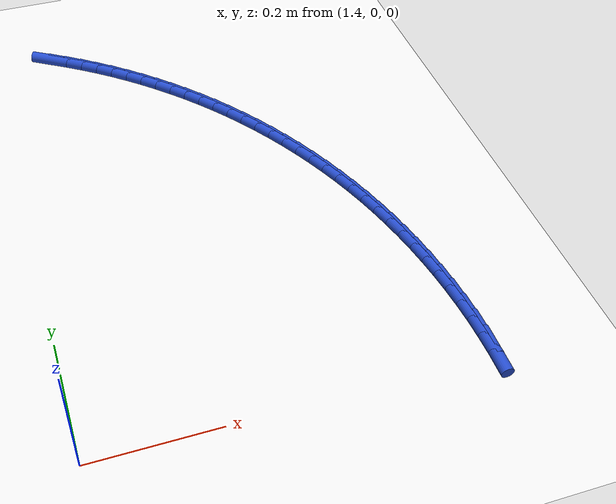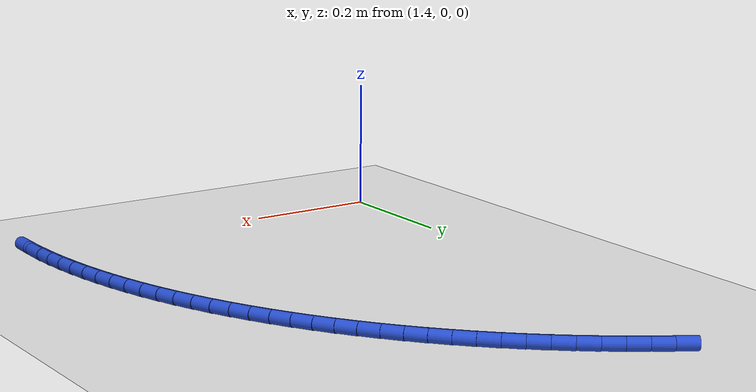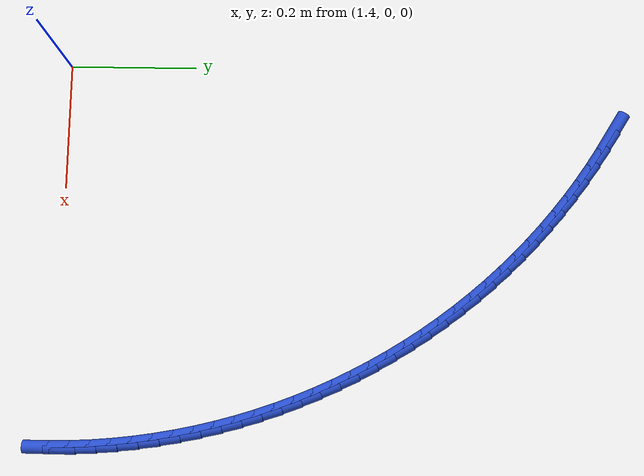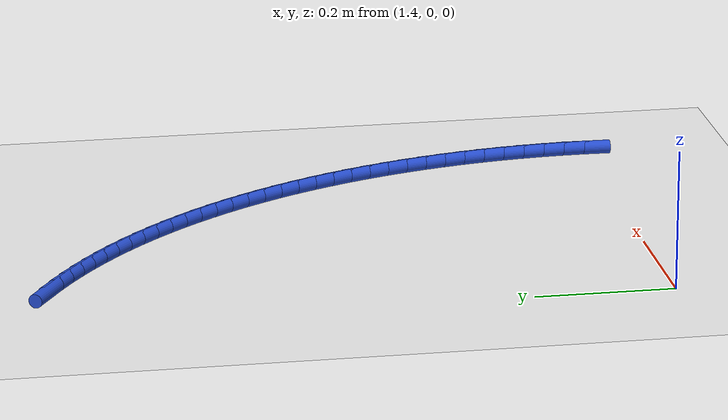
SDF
<sdf version="1.6">
 <world name="default">
  <model name="ground_plane">
   <static>1</static>
   <link name="link">
    <collision name="collision">
     <geometry><plane><normal>0 0 1</normal><size>100 100</size></plane></geometry>
     <surface><friction><ode><mu>100</mu><mu2>50</mu2></ode></friction></surface>
    </collision>
    <visual name="visual">
     <cast_shadows>0</cast_shadows>
     <geometry><plane><normal>0 0 1</normal><size>100 100</size></plane></geometry>
     <material>
      <script><uri>file://media/materials/scripts/gazebo.material</uri><name>Gazebo/WhiteGlow</name></script>
     </material>
    </visual>
   </link>
  </model>
  <model name="line">
   <static>1</static>
   <static>1</static>
   <static>1</static>
   <static>1</static>
   <static>1</static>
   <static>1</static>
   <static>1</static>
   <static>1</static>
   <static>1</static>
   <static>1</static>
   <static>1</static>
   <static>1</static>
   <static>1</static>
   <static>1</static>
   <static>1</static>
   <static>1</static>
   <static>1</static>
   <static>1</static>
   <static>1</static>
   <static>1</static>
   <static>1</static>
   <static>1</static>
   <static>1</static>
   <static>1</static>
   <static>1</static>
   <static>1</static>
   <static>1</static>
   <static>1</static>
   <static>1</static>
   <static>1</static>
   <static>1</static>
   <static>1</static>
   <static>1</static>
   <static>1</static>
   <static>1</static>
   <static>1</static>
   <static>1</static>
   <static>1</static>
   <static>1</static>
   <static>1</static>
   <static>1</static>
   <static>1</static>
   <static>1</static>
   <static>1</static>
   <static>1</static>
   <static>1</static>
   <static>1</static>
   <static>1</static>
   <static>1</static>
   <static>1</static>
   <static>1</static>
   <static>1</static>
   <static>1</static>
   <static>1</static>
   <static>1</static>
   <static>1</static>
   <static>1</static>
   <static>1</static>
   <static>1</static>
   <static>1</static>
   <static>1</static>
   <static>1</static>
   <static>1</static>
   <static>1</static>
   <static>1</static>
   <static>1</static>
   <static>1</static>
   <static>1</static>
   <link name="link_67">
    <pose>1.509034119153249 0.8607250578068034 0.01 0 1.57 -0.5495359490718497</pose>
    <collision name="collision">
     <geometry><cylinder><radius>0.01</radius><length>0.08</length></cylinder></geometry>
    </collision>
    <visual name="visual">
     <material>
      <script><name>Gazebo/Blue</name><uri>file://media/materials/scripts/gazebo.material</uri></script>
     </material>
     <geometry><cylinder><radius>0.01</radius><length>0.08</length></cylinder></geometry>
    </visual>
   </link>
   <static>1</static>
   <link name="link_68">
    <pose>1.5358231705817829 0.844317650307365 0.01 0 1.57 -0.5809653829443108</pose>
    <collision name="collision">
     <geometry><cylinder><radius>0.01</radius><length>0.08</length></cylinder></geometry>
    </collision>
    <visual name="visual">
     <material>
      <script><name>Gazebo/Blue</name><uri>file://media/materials/scripts/gazebo.material</uri></script>
     </material>
     <geometry><cylinder><radius>0.01</radius><length>0.08</length></cylinder></geometry>
    </visual>
   </link>
   <static>1</static>
   <link name="link_69">
    <pose>1.5620827950779084 0.8270769176921222 0.01 0 1.57 -0.6125046645061244</pose>
    <collision name="collision">
     <geometry><cylinder><radius>0.01</radius><length>0.08</length></cylinder></geometry>
    </collision>
    <visual name="visual">
     <material>
      <script><name>Gazebo/Blue</name><uri>file://media/materials/scripts/gazebo.material</uri></script>
     </material>
     <geometry><cylinder><radius>0.01</radius><length>0.08</length></cylinder></geometry>
    </visual>
   </link>
   <static>1</static>
   <link name="link_70">
    <pose>1.5877852522924727 0.809016994374947 0.01 0 1.57 -0.6441323969297834</pose>
    <collision name="collision">
     <geometry><cylinder><radius>0.01</radius><length>0.08</length></cylinder></geometry>
    </collision>
    <visual name="visual">
     <material>
      <script><name>Gazebo/Blue</name><uri>file://media/materials/scripts/gazebo.material</uri></script>
     </material>
     <geometry><cylinder><radius>0.01</radius><length>0.08</length></cylinder></geometry>
    </visual>
   </link>
   <static>1</static>
   <link name="link_71">
    <pose>1.6129037561235584 0.790153328178354 0.01 0 1.57 -0.6756716784915974</pose>
    <collision name="collision">
     <geometry><cylinder><radius>0.01</radius><length>0.08</length></cylinder></geometry>
    </collision>
    <visual name="visual">
     <material>
      <script><name>Gazebo/Blue</name><uri>file://media/materials/scripts/gazebo.material</uri></script>
     </material>
     <geometry><cylinder><radius>0.01</radius><length>0.08</length></cylinder></geometry>
    </visual>
   </link>
   <static>1</static>
   <link name="link_72">
    <pose>1.6374153374581952 0.7705066205594346 0.01 0 1.57 -0.7071011123640809</pose>
    <collision name="collision">
     <geometry><cylinder><radius>0.01</radius><length>0.08</length></cylinder></geometry>
    </collision>
    <visual name="visual">
     <material>
      <script><name>Gazebo/Blue</name><uri>file://media/materials/scripts/gazebo.material</uri></script>
     </material>
     <geometry><cylinder><radius>0.01</radius><length>0.08</length></cylinder></geometry>
    </visual>
   </link>
   <static>1</static>
   <link name="link_73">
    <pose>1.6612979814306472 0.7500988863839226 0.01 0 1.57 -0.738451627178918</pose>
    <collision name="collision">
     <geometry><cylinder><radius>0.01</radius><length>0.08</length></cylinder></geometry>
    </collision>
    <visual name="visual">
     <material>
      <script><name>Gazebo/Blue</name><uri>file://media/materials/scripts/gazebo.material</uri></script>
     </material>
     <geometry><cylinder><radius>0.01</radius><length>0.08</length></cylinder></geometry>
    </visual>
   </link>
   <static>1</static>
   <link name="link_74">
    <pose>1.6845296731751813 0.7289521405175535 0.01 0 1.57 -0.7697546094063723</pose>
    <collision name="collision">
     <geometry><cylinder><radius>0.01</radius><length>0.08</length></cylinder></geometry>
    </collision>
    <visual name="visual">
     <material>
      <script><name>Gazebo/Blue</name><uri>file://media/materials/scripts/gazebo.material</uri></script>
     </material>
     <geometry><cylinder><radius>0.01</radius><length>0.08</length></cylinder></geometry>
    </visual>
   </link>
   <static>1</static>
   <link name="link_75">
    <pose>1.7070883978260616 0.7070883978260615 0.01 0 1.57 -0.8010417173885143</pose>
    <collision name="collision">
     <geometry><cylinder><radius>0.01</radius><length>0.08</length></cylinder></geometry>
    </collision>
    <visual name="visual">
     <material>
      <script><name>Gazebo/Blue</name><uri>file://media/materials/scripts/gazebo.material</uri></script>
     </material>
     <geometry><cylinder><radius>0.01</radius><length>0.08</length></cylinder></geometry>
    </visual>
   </link>
   <static>1</static>
   <link name="link_76">
    <pose>1.7289521405175539 0.6845296731751814 0.01 0 1.57 -0.8323446996159641</pose>
    <collision name="collision">
     <geometry><cylinder><radius>0.01</radius><length>0.08</length></cylinder></geometry>
    </collision>
    <visual name="visual">
     <material>
      <script><name>Gazebo/Blue</name><uri>file://media/materials/scripts/gazebo.material</uri></script>
     </material>
     <geometry><cylinder><radius>0.01</radius><length>0.08</length></cylinder></geometry>
    </visual>
   </link>
   <static>1</static>
   <link name="link_77">
    <pose>1.750098886383923 0.6612979814306479 0.01 0 1.57 -0.8636952144308172</pose>
    <collision name="collision">
     <geometry><cylinder><radius>0.01</radius><length>0.08</length></cylinder></geometry>
    </collision>
    <visual name="visual">
     <material>
      <script><name>Gazebo/Blue</name><uri>file://media/materials/scripts/gazebo.material</uri></script>
     </material>
     <geometry><cylinder><radius>0.01</radius><length>0.08</length></cylinder></geometry>
    </visual>
   </link>
   <static>1</static>
   <link name="link_78">
    <pose>1.7705066205594353 0.6374153374581956 0.01 0 1.57 -0.8951246483032743</pose>
    <collision name="collision">
     <geometry><cylinder><radius>0.01</radius><length>0.08</length></cylinder></geometry>
    </collision>
    <visual name="visual">
     <material>
      <script><name>Gazebo/Blue</name><uri>file://media/materials/scripts/gazebo.material</uri></script>
     </material>
     <geometry><cylinder><radius>0.01</radius><length>0.08</length></cylinder></geometry>
    </visual>
   </link>
   <static>1</static>
   <link name="link_79">
    <pose>1.7901533281783553 0.6129037561235593 0.01 0 1.57 -0.9266639298651259</pose>
    <collision name="collision">
     <geometry><cylinder><radius>0.01</radius><length>0.08</length></cylinder></geometry>
    </collision>
    <visual name="visual">
     <material>
      <script><name>Gazebo/Blue</name><uri>file://media/materials/scripts/gazebo.material</uri></script>
     </material>
     <geometry><cylinder><radius>0.01</radius><length>0.08</length></cylinder></geometry>
    </visual>
   </link>
   <static>1</static>
   <link name="link_80">
    <pose>1.809016994374948 0.5877852522924734 0.01 0 1.57 -0.9582916622887488</pose>
    <collision name="collision">
     <geometry><cylinder><radius>0.01</radius><length>0.08</length></cylinder></geometry>
    </collision>
    <visual name="visual">
     <material>
      <script><name>Gazebo/Blue</name><uri>file://media/materials/scripts/gazebo.material</uri></script>
     </material>
     <geometry><cylinder><radius>0.01</radius><length>0.08</length></cylinder></geometry>
    </visual>
   </link>
   <static>1</static>
   <link name="link_81">
    <pose>1.8270769176921238 0.5620827950779094 0.01 0 1.57 -0.9898309438505898</pose>
    <collision name="collision">
     <geometry><cylinder><radius>0.01</radius><length>0.08</length></cylinder></geometry>
    </collision>
    <visual name="visual">
     <material>
      <script><name>Gazebo/Blue</name><uri>file://media/materials/scripts/gazebo.material</uri></script>
     </material>
     <geometry><cylinder><radius>0.01</radius><length>0.08</length></cylinder></geometry>
    </visual>
   </link>
   <static>1</static>
   <link name="link_82">
    <pose>1.8443176503073666 0.5358231705817836 0.01 0 1.57 -1.0212603777230616</pose>
    <collision name="collision">
     <geometry><cylinder><radius>0.01</radius><length>0.08</length></cylinder></geometry>
    </collision>
    <visual name="visual">
     <material>
      <script><name>Gazebo/Blue</name><uri>file://media/materials/scripts/gazebo.material</uri></script>
     </material>
     <geometry><cylinder><radius>0.01</radius><length>0.08</length></cylinder></geometry>
    </visual>
   </link>
   <static>1</static>
   <link name="link_83">
    <pose>1.8607250578068046 0.5090341191532495 0.01 0 1.57 -1.0526108925379174</pose>
    <collision name="collision">
     <geometry><cylinder><radius>0.01</radius><length>0.08</length></cylinder></geometry>
    </collision>
    <visual name="visual">
     <material>
      <script><name>Gazebo/Blue</name><uri>file://media/materials/scripts/gazebo.material</uri></script>
     </material>
     <geometry><cylinder><radius>0.01</radius><length>0.08</length></cylinder></geometry>
    </visual>
   </link>
   <static>1</static>
   <link name="link_84">
    <pose>1.876285005776567 0.48174338114146065 0.01 0 1.57 -1.083913874765355</pose>
    <collision name="collision">
     <geometry><cylinder><radius>0.01</radius><length>0.08</length></cylinder></geometry>
    </collision>
    <visual name="visual">
     <material>
      <script><name>Gazebo/Blue</name><uri>file://media/materials/scripts/gazebo.material</uri></script>
     </material>
     <geometry><cylinder><radius>0.01</radius><length>0.08</length></cylinder></geometry>
    </visual>
   </link>
   <static>1</static>
   <link name="link_85">
    <pose>1.8909833598027825 0.4539786968955696 0.01 0 1.57 -1.1152009827475036</pose>
    <collision name="collision">
     <geometry><cylinder><radius>0.01</radius><length>0.08</length></cylinder></geometry>
    </collision>
    <visual name="visual">
     <material>
      <script><name>Gazebo/Blue</name><uri>file://media/materials/scripts/gazebo.material</uri></script>
     </material>
     <geometry><cylinder><radius>0.01</radius><length>0.08</length></cylinder></geometry>
    </visual>
   </link>
   <static>1</static>
   <link name="link_86">
    <pose>1.9048059854715795 0.4257678067647297 0.01 0 1.57 -1.146503964974947</pose>
    <collision name="collision">
     <geometry><cylinder><radius>0.01</radius><length>0.08</length></cylinder></geometry>
    </collision>
    <visual name="visual">
     <material>
      <script><name>Gazebo/Blue</name><uri>file://media/materials/scripts/gazebo.material</uri></script>
     </material>
     <geometry><cylinder><radius>0.01</radius><length>0.08</length></cylinder></geometry>
    </visual>
   </link>
   <static>1</static>
   <link name="link_87">
    <pose>1.9177387483690864 0.3971384510980945 0.01 0 1.57 -1.1778544797897923</pose>
    <collision name="collision">
     <geometry><cylinder><radius>0.01</radius><length>0.08</length></cylinder></geometry>
    </collision>
    <visual name="visual">
     <material>
      <script><name>Gazebo/Blue</name><uri>file://media/materials/scripts/gazebo.material</uri></script>
     </material>
     <geometry><cylinder><radius>0.01</radius><length>0.08</length></cylinder></geometry>
    </visual>
   </link>
   <static>1</static>
   <link name="link_88">
    <pose>1.9297675140814325 0.368118370244817 0.01 0 1.57 -1.209283913662274</pose>
    <collision name="collision">
     <geometry><cylinder><radius>0.01</radius><length>0.08</length></cylinder></geometry>
    </collision>
    <visual name="visual">
     <material>
      <script><name>Gazebo/Blue</name><uri>file://media/materials/scripts/gazebo.material</uri></script>
     </material>
     <geometry><cylinder><radius>0.01</radius><length>0.08</length></cylinder></geometry>
    </visual>
   </link>
   <static>1</static>
   <link name="link_89">
    <pose>1.940878148194745 0.3387353045540503 0.01 0 1.57 -1.2408231952240873</pose>
    <collision name="collision">
     <geometry><cylinder><radius>0.01</radius><length>0.08</length></cylinder></geometry>
    </collision>
    <visual name="visual">
     <material>
      <script><name>Gazebo/Blue</name><uri>file://media/materials/scripts/gazebo.material</uri></script>
     </material>
     <geometry><cylinder><radius>0.01</radius><length>0.08</length></cylinder></geometry>
    </visual>
   </link>
   <static>1</static>
   <link name="link_90">
    <pose>1.9510565162951539 0.30901699437494795 0.01 0 1.57 -1.2724509276477263</pose>
    <collision name="collision">
     <geometry><cylinder><radius>0.01</radius><length>0.08</length></cylinder></geometry>
    </collision>
    <visual name="visual">
     <material>
      <script><name>Gazebo/Blue</name><uri>file://media/materials/scripts/gazebo.material</uri></script>
     </material>
     <geometry><cylinder><radius>0.01</radius><length>0.08</length></cylinder></geometry>
    </visual>
   </link>
   <static>1</static>
   <link name="link_91">
    <pose>1.9602900279732496 0.27899168173412375 0.01 0 1.57 -1.3039902092095956</pose>
    <collision name="collision">
     <geometry><cylinder><radius>0.01</radius><length>0.08</length></cylinder></geometry>
    </collision>
    <visual name="visual">
     <material>
      <script><name>Gazebo/Blue</name><uri>file://media/materials/scripts/gazebo.material</uri></script>
     </material>
     <geometry><cylinder><radius>0.01</radius><length>0.08</length></cylinder></geometry>
    </visual>
   </link>
   <static>1</static>
   <link name="link_92">
    <pose>1.9685722688374703 0.2486896153680351 0.01 0 1.57 -1.335419643082008</pose>
    <collision name="collision">
     <geometry><cylinder><radius>0.01</radius><length>0.08</length></cylinder></geometry>
    </collision>
    <visual name="visual">
     <material>
      <script><name>Gazebo/Blue</name><uri>file://media/materials/scripts/gazebo.material</uri></script>
     </material>
     <geometry><cylinder><radius>0.01</radius><length>0.08</length></cylinder></geometry>
    </visual>
   </link>
   <static>1</static>
   <link name="link_93">
    <pose>1.9758983685007203 0.21814154569060046 0.01 0 1.57 -1.3667701578969074</pose>
    <collision name="collision">
     <geometry><cylinder><radius>0.01</radius><length>0.08</length></cylinder></geometry>
    </collision>
    <visual name="visual">
     <material>
      <script><name>Gazebo/Blue</name><uri>file://media/materials/scripts/gazebo.material</uri></script>
     </material>
     <geometry><cylinder><radius>0.01</radius><length>0.08</length></cylinder></geometry>
    </visual>
   </link>
   <static>1</static>
   <link name="link_94">
    <pose>1.982263456575899 0.1873782231157379 0.01 0 1.57 -1.3980731401243252</pose>
    <collision name="collision">
     <geometry><cylinder><radius>0.01</radius><length>0.08</length></cylinder></geometry>
    </collision>
    <visual name="visual">
     <material>
      <script><name>Gazebo/Blue</name><uri>file://media/materials/scripts/gazebo.material</uri></script>
     </material>
     <geometry><cylinder><radius>0.01</radius><length>0.08</length></cylinder></geometry>
    </visual>
   </link>
   <static>1</static>
   <link name="link_95">
    <pose>1.98766266267591 0.15643039805736578 0.01 0 1.57 -1.4293602481064704</pose>
    <collision name="collision">
     <geometry><cylinder><radius>0.01</radius><length>0.08</length></cylinder></geometry>
    </collision>
    <visual name="visual">
     <material>
      <script><name>Gazebo/Blue</name><uri>file://media/materials/scripts/gazebo.material</uri></script>
     </material>
     <geometry><cylinder><radius>0.01</radius><length>0.08</length></cylinder></geometry>
    </visual>
   </link>
   <static>1</static>
   <link name="link_96">
    <pose>1.9920911164136543 0.12532882092940267 0.01 0 1.57 -1.4606632303339238</pose>
    <collision name="collision">
     <geometry><cylinder><radius>0.01</radius><length>0.08</length></cylinder></geometry>
    </collision>
    <visual name="visual">
     <material>
      <script><name>Gazebo/Blue</name><uri>file://media/materials/scripts/gazebo.material</uri></script>
     </material>
     <geometry><cylinder><radius>0.01</radius><length>0.08</length></cylinder></geometry>
    </visual>
   </link>
   <static>1</static>
   <link name="link_97">
    <pose>1.9955439474020336 0.09410424214576617 0.01 0 1.57 -1.4920137451487794</pose>
    <collision name="collision">
     <geometry><cylinder><radius>0.01</radius><length>0.08</length></cylinder></geometry>
    </collision>
    <visual name="visual">
     <material>
      <script><name>Gazebo/Blue</name><uri>file://media/materials/scripts/gazebo.material</uri></script>
     </material>
     <geometry><cylinder><radius>0.01</radius><length>0.08</length></cylinder></geometry>
    </visual>
   </link>
   <static>1</static>
   <link name="link_98">
    <pose>1.99801628525395 0.06278741212037484 0.01 0 1.57 -1.5234431790212517</pose>
    <collision name="collision">
     <geometry><cylinder><radius>0.01</radius><length>0.08</length></cylinder></geometry>
    </collision>
    <visual name="visual">
     <material>
      <script><name>Gazebo/Blue</name><uri>file://media/materials/scripts/gazebo.material</uri></script>
     </material>
     <geometry><cylinder><radius>0.01</radius><length>0.08</length></cylinder></geometry>
    </visual>
   </link>
   <static>1</static>
   <link name="link_99">
    <pose>1.9995032595823048 0.03140908126714696 0.01 0 1.57 -1.5549824605830755</pose>
    <collision name="collision">
     <geometry><cylinder><radius>0.01</radius><length>0.08</length></cylinder></geometry>
    </collision>
    <visual name="visual">
     <material>
      <script><name>Gazebo/Blue</name><uri>file://media/materials/scripts/gazebo.material</uri></script>
     </material>
     <geometry><cylinder><radius>0.01</radius><length>0.08</length></cylinder></geometry>
    </visual>
   </link>
   <static>1</static>
   <link name="link_100">
    <pose>2.0000000000000004 8.049116928532385e-16 0.01 0 1.57 1.5549824605830826</pose>
    <collision name="collision">
     <geometry><cylinder><radius>0.01</radius><length>0.08</length></cylinder></geometry>
    </collision>
    <visual name="visual">
     <material>
      <script><name>Gazebo/Blue</name><uri>file://media/materials/scripts/gazebo.material</uri></script>
     </material>
     <geometry><cylinder><radius>0.01</radius><length>0.08</length></cylinder></geometry>
    </visual>
   </link>
   <static>1</static>
   <static>1</static>
   <static>1</static>
   <static>1</static>
   <static>1</static>
   <static>1</static>
   <static>1</static>
   <static>1</static>
   <static>1</static>
   <static>1</static>
   <static>1</static>
   <static>1</static>
   <static>1</static>
   <static>1</static>
   <static>1</static>
   <static>1</static>
   <static>1</static>
   <static>1</static>
   <static>1</static>
   <static>1</static>
   <static>1</static>
   <static>1</static>
   <static>1</static>
   <static>1</static>
   <static>1</static>
   <static>1</static>
   <static>1</static>
   <static>1</static>
   <static>1</static>
   <static>1</static>
   <static>1</static>
   <static>1</static>
   <static>1</static>
   <static>1</static>
   <static>1</static>
   <static>1</static>
   <static>1</static>
   <static>1</static>
   <static>1</static>
   <static>1</static>
   <static>1</static>
   <static>1</static>
   <static>1</static>
   <static>1</static>
   <static>1</static>
   <static>1</static>
   <static>1</static>
   <static>1</static>
   <static>1</static>
   <static>1</static>
   <static>1</static>
   <static>1</static>
   <static>1</static>
   <static>1</static>
   <static>1</static>
   <static>1</static>
   <static>1</static>
   <static>1</static>
   <static>1</static>
   <static>1</static>
   <static>1</static>
   <static>1</static>
   <static>1</static>
   <static>1</static>
   <static>1</static>
   <static>1</static>
   <static>1</static>
   <static>1</static>
   <static>1</static>
   <static>1</static>
   <static>1</static>
   <static>1</static>
   <static>1</static>
   <static>1</static>
   <static>1</static>
   <static>1</static>
   <static>1</static>
   <static>1</static>
   <static>1</static>
   <static>1</static>
   <static>1</static>
   <static>1</static>
   <static>1</static>
   <static>1</static>
   <static>1</static>
   <static>1</static>
   <static>1</static>
   <static>1</static>
   <static>1</static>
   <static>1</static>
   <static>1</static>
   <static>1</static>
   <static>1</static>
   <static>1</static>
   <static>1</static>
   <static>1</static>
   <static>1</static>
   <static>1</static>
   <static>1</static>
   <static>1</static>
   <static>1</static>
  </model>
 </world>
</sdf>
